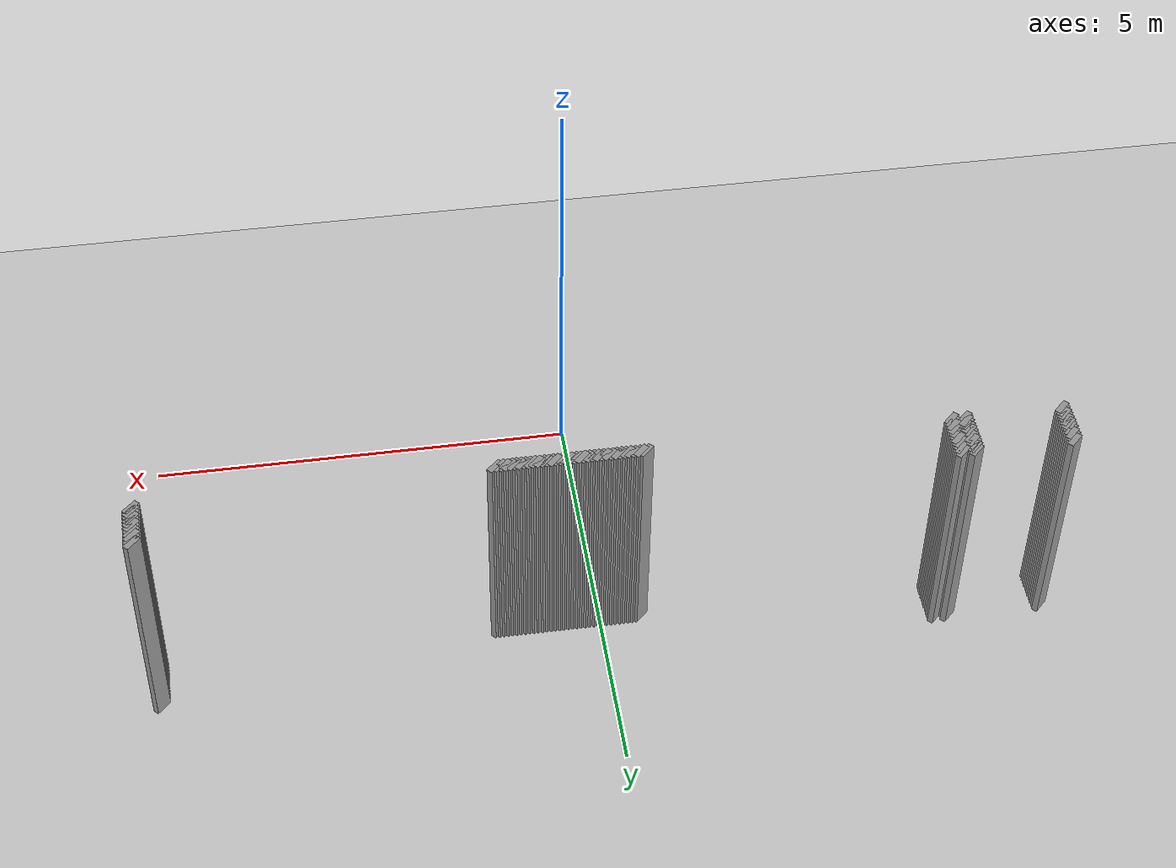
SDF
<sdf version="1.5">
 <world name="default">
  <include><uri>model://ground_plane</uri></include>
  <include><uri>model://sun</uri></include>
  <model name="grey_wall_315">
   <static>1</static>
   <link name="link">
    <pose>5.075 3.575  1.4 0 0 -0.785398163397</pose>
    <collision name="collision"><geometry><box><size>0.0707106781187 .2  2.8</size></box></geometry></collision>
    <visual name="visual">
     <cast_shadows>0</cast_shadows>
     <geometry><box><size>0.0707106781187 .2  2.8</size></box></geometry>
     <material>
      <script>
       <uri>model://grey_wall/materials/scripts</uri>
       <uri>model://grey_wall/materials/textures</uri>
       <name>vrc/grey_wall</name>
      </script>
     </material>
    </visual>
   </link>
  </model>
  <model name="grey_wall_316">
   <static>1</static>
   <link name="link">
    <pose>-5.125 3.525  1.4 0 0 -0.785398163397</pose>
    <collision name="collision"><geometry><box><size>0.0707106781187 .2  2.8</size></box></geometry></collision>
    <visual name="visual">
     <cast_shadows>0</cast_shadows>
     <geometry><box><size>0.0707106781187 .2  2.8</size></box></geometry>
     <material>
      <script>
       <uri>model://grey_wall/materials/scripts</uri>
       <uri>model://grey_wall/materials/textures</uri>
       <name>vrc/grey_wall</name>
      </script>
     </material>
    </visual>
   </link>
  </model>
  <model name="grey_wall_317">
   <static>1</static>
   <link name="link">
    <pose>-4.025 3.525  1.4 0 0 -0.785398163397</pose>
    <collision name="collision"><geometry><box><size>0.0707106781187 .2  2.8</size></box></geometry></collision>
    <visual name="visual">
     <cast_shadows>0</cast_shadows>
     <geometry><box><size>0.0707106781187 .2  2.8</size></box></geometry>
     <material>
      <script>
       <uri>model://grey_wall/materials/scripts</uri>
       <uri>model://grey_wall/materials/textures</uri>
       <name>vrc/grey_wall</name>
      </script>
     </material>
    </visual>
   </link>
  </model>
  <model name="grey_wall_318">
   <static>1</static>
   <link name="link">
    <pose>-3.875 3.525  1.4 0 0 -0.785398163397</pose>
    <collision name="collision"><geometry><box><size>0.0707106781187 .2  2.8</size></box></geometry></collision>
    <visual name="visual">
     <cast_shadows>0</cast_shadows>
     <geometry><box><size>0.0707106781187 .2  2.8</size></box></geometry>
     <material>
      <script>
       <uri>model://grey_wall/materials/scripts</uri>
       <uri>model://grey_wall/materials/textures</uri>
       <name>vrc/grey_wall</name>
      </script>
     </material>
    </visual>
   </link>
  </model>
  <model name="grey_wall_319">
   <static>1</static>
   <link name="link">
    <pose>5.075 3.525  1.4 0 0 -0.785398163397</pose>
    <collision name="collision"><geometry><box><size>0.0707106781187 .2  2.8</size></box></geometry></collision>
    <visual name="visual">
     <cast_shadows>0</cast_shadows>
     <geometry><box><size>0.0707106781187 .2  2.8</size></box></geometry>
     <material>
      <script>
       <uri>model://grey_wall/materials/scripts</uri>
       <uri>model://grey_wall/materials/textures</uri>
       <name>vrc/grey_wall</name>
      </script>
     </material>
    </visual>
   </link>
  </model>
  <model name="grey_wall_320">
   <static>1</static>
   <link name="link">
    <pose>-5.125 3.475  1.4 0 0 -0.785398163397</pose>
    <collision name="collision"><geometry><box><size>0.0707106781187 .2  2.8</size></box></geometry></collision>
    <visual name="visual">
     <cast_shadows>0</cast_shadows>
     <geometry><box><size>0.0707106781187 .2  2.8</size></box></geometry>
     <material>
      <script>
       <uri>model://grey_wall/materials/scripts</uri>
       <uri>model://grey_wall/materials/textures</uri>
       <name>vrc/grey_wall</name>
      </script>
     </material>
    </visual>
   </link>
  </model>
  <model name="grey_wall_321">
   <static>1</static>
   <link name="link">
    <pose>-4.025 3.475  1.4 0 0 -0.785398163397</pose>
    <collision name="collision"><geometry><box><size>0.0707106781187 .2  2.8</size></box></geometry></collision>
    <visual name="visual">
     <cast_shadows>0</cast_shadows>
     <geometry><box><size>0.0707106781187 .2  2.8</size></box></geometry>
     <material>
      <script>
       <uri>model://grey_wall/materials/scripts</uri>
       <uri>model://grey_wall/materials/textures</uri>
       <name>vrc/grey_wall</name>
      </script>
     </material>
    </visual>
   </link>
  </model>
  <model name="grey_wall_322">
   <static>1</static>
   <link name="link">
    <pose>-3.875 3.475  1.4 0 0 -0.785398163397</pose>
    <collision name="collision"><geometry><box><size>0.0707106781187 .2  2.8</size></box></geometry></collision>
    <visual name="visual">
     <cast_shadows>0</cast_shadows>
     <geometry><box><size>0.0707106781187 .2  2.8</size></box></geometry>
     <material>
      <script>
       <uri>model://grey_wall/materials/scripts</uri>
       <uri>model://grey_wall/materials/textures</uri>
       <name>vrc/grey_wall</name>
      </script>
     </material>
    </visual>
   </link>
  </model>
  <model name="grey_wall_323">
   <static>1</static>
   <link name="link">
    <pose>5.075 3.475  1.4 0 0 -0.785398163397</pose>
    <collision name="collision"><geometry><box><size>0.0707106781187 .2  2.8</size></box></geometry></collision>
    <visual name="visual">
     <cast_shadows>0</cast_shadows>
     <geometry><box><size>0.0707106781187 .2  2.8</size></box></geometry>
     <material>
      <script>
       <uri>model://grey_wall/materials/scripts</uri>
       <uri>model://grey_wall/materials/textures</uri>
       <name>vrc/grey_wall</name>
      </script>
     </material>
    </visual>
   </link>
  </model>
  <model name="grey_wall_324">
   <static>1</static>
   <link name="link">
    <pose>-5.125 3.425  1.4 0 0 -0.785398163397</pose>
    <collision name="collision"><geometry><box><size>0.0707106781187 .2  2.8</size></box></geometry></collision>
    <visual name="visual">
     <cast_shadows>0</cast_shadows>
     <geometry><box><size>0.0707106781187 .2  2.8</size></box></geometry>
     <material>
      <script>
       <uri>model://grey_wall/materials/scripts</uri>
       <uri>model://grey_wall/materials/textures</uri>
       <name>vrc/grey_wall</name>
      </script>
     </material>
    </visual>
   </link>
  </model>
  <model name="grey_wall_325">
   <static>1</static>
   <link name="link">
    <pose>-4.025 3.425  1.4 0 0 -0.785398163397</pose>
    <collision name="collision"><geometry><box><size>0.0707106781187 .2  2.8</size></box></geometry></collision>
    <visual name="visual">
     <cast_shadows>0</cast_shadows>
     <geometry><box><size>0.0707106781187 .2  2.8</size></box></geometry>
     <material>
      <script>
       <uri>model://grey_wall/materials/scripts</uri>
       <uri>model://grey_wall/materials/textures</uri>
       <name>vrc/grey_wall</name>
      </script>
     </material>
    </visual>
   </link>
  </model>
  <model name="grey_wall_326">
   <static>1</static>
   <link name="link">
    <pose>-3.875 3.425  1.4 0 0 -0.785398163397</pose>
    <collision name="collision"><geometry><box><size>0.0707106781187 .2  2.8</size></box></geometry></collision>
    <visual name="visual">
     <cast_shadows>0</cast_shadows>
     <geometry><box><size>0.0707106781187 .2  2.8</size></box></geometry>
     <material>
      <script>
       <uri>model://grey_wall/materials/scripts</uri>
       <uri>model://grey_wall/materials/textures</uri>
       <name>vrc/grey_wall</name>
      </script>
     </material>
    </visual>
   </link>
  </model>
  <model name="grey_wall_327">
   <static>1</static>
   <link name="link">
    <pose>5.075 3.425  1.4 0 0 -0.785398163397</pose>
    <collision name="collision"><geometry><box><size>0.0707106781187 .2  2.8</size></box></geometry></collision>
    <visual name="visual">
     <cast_shadows>0</cast_shadows>
     <geometry><box><size>0.0707106781187 .2  2.8</size></box></geometry>
     <material>
      <script>
       <uri>model://grey_wall/materials/scripts</uri>
       <uri>model://grey_wall/materials/textures</uri>
       <name>vrc/grey_wall</name>
      </script>
     </material>
    </visual>
   </link>
  </model>
  <model name="grey_wall_328">
   <static>1</static>
   <link name="link">
    <pose>-5.125 3.375  1.4 0 0 -0.785398163397</pose>
    <collision name="collision"><geometry><box><size>0.0707106781187 .2  2.8</size></box></geometry></collision>
    <visual name="visual">
     <cast_shadows>0</cast_shadows>
     <geometry><box><size>0.0707106781187 .2  2.8</size></box></geometry>
     <material>
      <script>
       <uri>model://grey_wall/materials/scripts</uri>
       <uri>model://grey_wall/materials/textures</uri>
       <name>vrc/grey_wall</name>
      </script>
     </material>
    </visual>
   </link>
  </model>
  <model name="grey_wall_329">
   <static>1</static>
   <link name="link">
    <pose>-4.025 3.375  1.4 0 0 -0.785398163397</pose>
    <collision name="collision"><geometry><box><size>0.0707106781187 .2  2.8</size></box></geometry></collision>
    <visual name="visual">
     <cast_shadows>0</cast_shadows>
     <geometry><box><size>0.0707106781187 .2  2.8</size></box></geometry>
     <material>
      <script>
       <uri>model://grey_wall/materials/scripts</uri>
       <uri>model://grey_wall/materials/textures</uri>
       <name>vrc/grey_wall</name>
      </script>
     </material>
    </visual>
   </link>
  </model>
  <model name="grey_wall_330">
   <static>1</static>
   <link name="link">
    <pose>-3.875 3.375  1.4 0 0 -0.785398163397</pose>
    <collision name="collision"><geometry><box><size>0.0707106781187 .2  2.8</size></box></geometry></collision>
    <visual name="visual">
     <cast_shadows>0</cast_shadows>
     <geometry><box><size>0.0707106781187 .2  2.8</size></box></geometry>
     <material>
      <script>
       <uri>model://grey_wall/materials/scripts</uri>
       <uri>model://grey_wall/materials/textures</uri>
       <name>vrc/grey_wall</name>
      </script>
     </material>
    </visual>
   </link>
  </model>
  <model name="grey_wall_331">
   <static>1</static>
   <link name="link">
    <pose>5.075 3.375  1.4 0 0 -0.785398163397</pose>
    <collision name="collision"><geometry><box><size>0.0707106781187 .2  2.8</size></box></geometry></collision>
    <visual name="visual">
     <cast_shadows>0</cast_shadows>
     <geometry><box><size>0.0707106781187 .2  2.8</size></box></geometry>
     <material>
      <script>
       <uri>model://grey_wall/materials/scripts</uri>
       <uri>model://grey_wall/materials/textures</uri>
       <name>vrc/grey_wall</name>
      </script>
     </material>
    </visual>
   </link>
  </model>
  <model name="grey_wall_332">
   <static>1</static>
   <link name="link">
    <pose>-5.125 3.325  1.4 0 0 -0.785398163397</pose>
    <collision name="collision"><geometry><box><size>0.0707106781187 .2  2.8</size></box></geometry></collision>
    <visual name="visual">
     <cast_shadows>0</cast_shadows>
     <geometry><box><size>0.0707106781187 .2  2.8</size></box></geometry>
     <material>
      <script>
       <uri>model://grey_wall/materials/scripts</uri>
       <uri>model://grey_wall/materials/textures</uri>
       <name>vrc/grey_wall</name>
      </script>
     </material>
    </visual>
   </link>
  </model>
  <model name="grey_wall_333">
   <static>1</static>
   <link name="link">
    <pose>-4.025 3.325  1.4 0 0 -0.785398163397</pose>
    <collision name="collision"><geometry><box><size>0.0707106781187 .2  2.8</size></box></geometry></collision>
    <visual name="visual">
     <cast_shadows>0</cast_shadows>
     <geometry><box><size>0.0707106781187 .2  2.8</size></box></geometry>
     <material>
      <script>
       <uri>model://grey_wall/materials/scripts</uri>
       <uri>model://grey_wall/materials/textures</uri>
       <name>vrc/grey_wall</name>
      </script>
     </material>
    </visual>
   </link>
  </model>
  <model name="grey_wall_334">
   <static>1</static>
   <link name="link">
    <pose>-3.875 3.325  1.4 0 0 -0.785398163397</pose>
    <collision name="collision"><geometry><box><size>0.0707106781187 .2  2.8</size></box></geometry></collision>
    <visual name="visual">
     <cast_shadows>0</cast_shadows>
     <geometry><box><size>0.0707106781187 .2  2.8</size></box></geometry>
     <material>
      <script>
       <uri>model://grey_wall/materials/scripts</uri>
       <uri>model://grey_wall/materials/textures</uri>
       <name>vrc/grey_wall</name>
      </script>
     </material>
    </visual>
   </link>
  </model>
  <model name="grey_wall_335">
   <static>1</static>
   <link name="link">
    <pose>5.075 3.325  1.4 0 0 -0.785398163397</pose>
    <collision name="collision"><geometry><box><size>0.0707106781187 .2  2.8</size></box></geometry></collision>
    <visual name="visual">
     <cast_shadows>0</cast_shadows>
     <geometry><box><size>0.0707106781187 .2  2.8</size></box></geometry>
     <material>
      <script>
       <uri>model://grey_wall/materials/scripts</uri>
       <uri>model://grey_wall/materials/textures</uri>
       <name>vrc/grey_wall</name>
      </script>
     </material>
    </visual>
   </link>
  </model>
  <model name="grey_wall_336">
   <static>1</static>
   <link name="link">
    <pose>-5.125 3.275  1.4 0 0 -0.785398163397</pose>
    <collision name="collision"><geometry><box><size>0.0707106781187 .2  2.8</size></box></geometry></collision>
    <visual name="visual">
     <cast_shadows>0</cast_shadows>
     <geometry><box><size>0.0707106781187 .2  2.8</size></box></geometry>
     <material>
      <script>
       <uri>model://grey_wall/materials/scripts</uri>
       <uri>model://grey_wall/materials/textures</uri>
       <name>vrc/grey_wall</name>
      </script>
     </material>
    </visual>
   </link>
  </model>
  <model name="grey_wall_337">
   <static>1</static>
   <link name="link">
    <pose>-4.025 3.275  1.4 0 0 -0.785398163397</pose>
    <collision name="collision"><geometry><box><size>0.0707106781187 .2  2.8</size></box></geometry></collision>
    <visual name="visual">
     <cast_shadows>0</cast_shadows>
     <geometry><box><size>0.0707106781187 .2  2.8</size></box></geometry>
     <material>
      <script>
       <uri>model://grey_wall/materials/scripts</uri>
       <uri>model://grey_wall/materials/textures</uri>
       <name>vrc/grey_wall</name>
      </script>
     </material>
    </visual>
   </link>
  </model>
  <model name="grey_wall_338">
   <static>1</static>
   <link name="link">
    <pose>-3.875 3.275  1.4 0 0 -0.785398163397</pose>
    <collision name="collision"><geometry><box><size>0.0707106781187 .2  2.8</size></box></geometry></collision>
    <visual name="visual">
     <cast_shadows>0</cast_shadows>
     <geometry><box><size>0.0707106781187 .2  2.8</size></box></geometry>
     <material>
      <script>
       <uri>model://grey_wall/materials/scripts</uri>
       <uri>model://grey_wall/materials/textures</uri>
       <name>vrc/grey_wall</name>
      </script>
     </material>
    </visual>
   </link>
  </model>
  <model name="grey_wall_339">
   <static>1</static>
   <link name="link">
    <pose>5.075 3.275  1.4 0 0 -0.785398163397</pose>
    <collision name="collision"><geometry><box><size>0.0707106781187 .2  2.8</size></box></geometry></collision>
    <visual name="visual">
     <cast_shadows>0</cast_shadows>
     <geometry><box><size>0.0707106781187 .2  2.8</size></box></geometry>
     <material>
      <script>
       <uri>model://grey_wall/materials/scripts</uri>
       <uri>model://grey_wall/materials/textures</uri>
       <name>vrc/grey_wall</name>
      </script>
     </material>
    </visual>
   </link>
  </model>
  <model name="grey_wall_340">
   <static>1</static>
   <link name="link">
    <pose>-5.125 3.225  1.4 0 0 -0.785398163397</pose>
    <collision name="collision"><geometry><box><size>0.0707106781187 .2  2.8</size></box></geometry></collision>
    <visual name="visual">
     <cast_shadows>0</cast_shadows>
     <geometry><box><size>0.0707106781187 .2  2.8</size></box></geometry>
     <material>
      <script>
       <uri>model://grey_wall/materials/scripts</uri>
       <uri>model://grey_wall/materials/textures</uri>
       <name>vrc/grey_wall</name>
      </script>
     </material>
    </visual>
   </link>
  </model>
  <model name="grey_wall_341">
   <static>1</static>
   <link name="link">
    <pose>-4.025 3.225  1.4 0 0 -0.785398163397</pose>
    <collision name="collision"><geometry><box><size>0.0707106781187 .2  2.8</size></box></geometry></collision>
    <visual name="visual">
     <cast_shadows>0</cast_shadows>
     <geometry><box><size>0.0707106781187 .2  2.8</size></box></geometry>
     <material>
      <script>
       <uri>model://grey_wall/materials/scripts</uri>
       <uri>model://grey_wall/materials/textures</uri>
       <name>vrc/grey_wall</name>
      </script>
     </material>
    </visual>
   </link>
  </model>
  <model name="grey_wall_342">
   <static>1</static>
   <link name="link">
    <pose>-3.875 3.225  1.4 0 0 -0.785398163397</pose>
    <collision name="collision"><geometry><box><size>0.0707106781187 .2  2.8</size></box></geometry></collision>
    <visual name="visual">
     <cast_shadows>0</cast_shadows>
     <geometry><box><size>0.0707106781187 .2  2.8</size></box></geometry>
     <material>
      <script>
       <uri>model://grey_wall/materials/scripts</uri>
       <uri>model://grey_wall/materials/textures</uri>
       <name>vrc/grey_wall</name>
      </script>
     </material>
    </visual>
   </link>
  </model>
  <model name="grey_wall_343">
   <static>1</static>
   <link name="link">
    <pose>5.075 3.225  1.4 0 0 -0.785398163397</pose>
    <collision name="collision"><geometry><box><size>0.0707106781187 .2  2.8</size></box></geometry></collision>
    <visual name="visual">
     <cast_shadows>0</cast_shadows>
     <geometry><box><size>0.0707106781187 .2  2.8</size></box></geometry>
     <material>
      <script>
       <uri>model://grey_wall/materials/scripts</uri>
       <uri>model://grey_wall/materials/textures</uri>
       <name>vrc/grey_wall</name>
      </script>
     </material>
    </visual>
   </link>
  </model>
  <model name="grey_wall_344">
   <static>1</static>
   <link name="link">
    <pose>-5.125 3.175  1.4 0 0 -0.785398163397</pose>
    <collision name="collision"><geometry><box><size>0.0707106781187 .2  2.8</size></box></geometry></collision>
    <visual name="visual">
     <cast_shadows>0</cast_shadows>
     <geometry><box><size>0.0707106781187 .2  2.8</size></box></geometry>
     <material>
      <script>
       <uri>model://grey_wall/materials/scripts</uri>
       <uri>model://grey_wall/materials/textures</uri>
       <name>vrc/grey_wall</name>
      </script>
     </material>
    </visual>
   </link>
  </model>
  <model name="grey_wall_345">
   <static>1</static>
   <link name="link">
    <pose>-4.025 3.175  1.4 0 0 -0.785398163397</pose>
    <collision name="collision"><geometry><box><size>0.0707106781187 .2  2.8</size></box></geometry></collision>
    <visual name="visual">
     <cast_shadows>0</cast_shadows>
     <geometry><box><size>0.0707106781187 .2  2.8</size></box></geometry>
     <material>
      <script>
       <uri>model://grey_wall/materials/scripts</uri>
       <uri>model://grey_wall/materials/textures</uri>
       <name>vrc/grey_wall</name>
      </script>
     </material>
    </visual>
   </link>
  </model>
  <model name="grey_wall_346">
   <static>1</static>
   <link name="link">
    <pose>-3.875 3.175  1.4 0 0 -0.785398163397</pose>
    <collision name="collision"><geometry><box><size>0.0707106781187 .2  2.8</size></box></geometry></collision>
    <visual name="visual">
     <cast_shadows>0</cast_shadows>
     <geometry><box><size>0.0707106781187 .2  2.8</size></box></geometry>
     <material>
      <script>
       <uri>model://grey_wall/materials/scripts</uri>
       <uri>model://grey_wall/materials/textures</uri>
       <name>vrc/grey_wall</name>
      </script>
     </material>
    </visual>
   </link>
  </model>
  <model name="grey_wall_347">
   <static>1</static>
   <link name="link">
    <pose>5.075 3.175  1.4 0 0 -0.785398163397</pose>
    <collision name="collision"><geometry><box><size>0.0707106781187 .2  2.8</size></box></geometry></collision>
    <visual name="visual">
     <cast_shadows>0</cast_shadows>
     <geometry><box><size>0.0707106781187 .2  2.8</size></box></geometry>
     <material>
      <script>
       <uri>model://grey_wall/materials/scripts</uri>
       <uri>model://grey_wall/materials/textures</uri>
       <name>vrc/grey_wall</name>
      </script>
     </material>
    </visual>
   </link>
  </model>
  <model name="grey_wall_348">
   <static>1</static>
   <link name="link">
    <pose>-5.125 3.125  1.4 0 0 -0.785398163397</pose>
    <collision name="collision"><geometry><box><size>0.0707106781187 .2  2.8</size></box></geometry></collision>
    <visual name="visual">
     <cast_shadows>0</cast_shadows>
     <geometry><box><size>0.0707106781187 .2  2.8</size></box></geometry>
     <material>
      <script>
       <uri>model://grey_wall/materials/scripts</uri>
       <uri>model://grey_wall/materials/textures</uri>
       <name>vrc/grey_wall</name>
      </script>
     </material>
    </visual>
   </link>
  </model>
  <model name="grey_wall_349">
   <static>1</static>
   <link name="link">
    <pose>-4.025 3.125  1.4 0 0 -0.785398163397</pose>
    <collision name="collision"><geometry><box><size>0.0707106781187 .2  2.8</size></box></geometry></collision>
    <visual name="visual">
     <cast_shadows>0</cast_shadows>
     <geometry><box><size>0.0707106781187 .2  2.8</size></box></geometry>
     <material>
      <script>
       <uri>model://grey_wall/materials/scripts</uri>
       <uri>model://grey_wall/materials/textures</uri>
       <name>vrc/grey_wall</name>
      </script>
     </material>
    </visual>
   </link>
  </model>
  <model name="grey_wall_350">
   <static>1</static>
   <link name="link">
    <pose>-3.875 3.125  1.4 0 0 -0.785398163397</pose>
    <collision name="collision"><geometry><box><size>0.0707106781187 .2  2.8</size></box></geometry></collision>
    <visual name="visual">
     <cast_shadows>0</cast_shadows>
     <geometry><box><size>0.0707106781187 .2  2.8</size></box></geometry>
     <material>
      <script>
       <uri>model://grey_wall/materials/scripts</uri>
       <uri>model://grey_wall/materials/textures</uri>
       <name>vrc/grey_wall</name>
      </script>
     </material>
    </visual>
   </link>
  </model>
  <model name="grey_wall_351">
   <static>1</static>
   <link name="link">
    <pose>5.075 3.125  1.4 0 0 -0.785398163397</pose>
    <collision name="collision"><geometry><box><size>0.0707106781187 .2  2.8</size></box></geometry></collision>
    <visual name="visual">
     <cast_shadows>0</cast_shadows>
     <geometry><box><size>0.0707106781187 .2  2.8</size></box></geometry>
     <material>
      <script>
       <uri>model://grey_wall/materials/scripts</uri>
       <uri>model://grey_wall/materials/textures</uri>
       <name>vrc/grey_wall</name>
      </script>
     </material>
    </visual>
   </link>
  </model>
  <model name="grey_wall_352">
   <static>1</static>
   <link name="link">
    <pose>-5.125 3.075  1.4 0 0 -0.785398163397</pose>
    <collision name="collision"><geometry><box><size>0.0707106781187 .2  2.8</size></box></geometry></collision>
    <visual name="visual">
     <cast_shadows>0</cast_shadows>
     <geometry><box><size>0.0707106781187 .2  2.8</size></box></geometry>
     <material>
      <script>
       <uri>model://grey_wall/materials/scripts</uri>
       <uri>model://grey_wall/materials/textures</uri>
       <name>vrc/grey_wall</name>
      </script>
     </material>
    </visual>
   </link>
  </model>
  <model name="grey_wall_353">
   <static>1</static>
   <link name="link">
    <pose>-4.025 3.075  1.4 0 0 -0.785398163397</pose>
    <collision name="collision"><geometry><box><size>0.0707106781187 .2  2.8</size></box></geometry></collision>
    <visual name="visual">
     <cast_shadows>0</cast_shadows>
     <geometry><box><size>0.0707106781187 .2  2.8</size></box></geometry>
     <material>
      <script>
       <uri>model://grey_wall/materials/scripts</uri>
       <uri>model://grey_wall/materials/textures</uri>
       <name>vrc/grey_wall</name>
      </script>
     </material>
    </visual>
   </link>
  </model>
  <model name="grey_wall_354">
   <static>1</static>
   <link name="link">
    <pose>-3.875 3.075  1.4 0 0 -0.785398163397</pose>
    <collision name="collision"><geometry><box><size>0.0707106781187 .2  2.8</size></box></geometry></collision>
    <visual name="visual">
     <cast_shadows>0</cast_shadows>
     <geometry><box><size>0.0707106781187 .2  2.8</size></box></geometry>
     <material>
      <script>
       <uri>model://grey_wall/materials/scripts</uri>
       <uri>model://grey_wall/materials/textures</uri>
       <name>vrc/grey_wall</name>
      </script>
     </material>
    </visual>
   </link>
  </model>
  <model name="grey_wall_355">
   <static>1</static>
   <link name="link">
    <pose>5.075 3.075  1.4 0 0 -0.785398163397</pose>
    <collision name="collision"><geometry><box><size>0.0707106781187 .2  2.8</size></box></geometry></collision>
    <visual name="visual">
     <cast_shadows>0</cast_shadows>
     <geometry><box><size>0.0707106781187 .2  2.8</size></box></geometry>
     <material>
      <script>
       <uri>model://grey_wall/materials/scripts</uri>
       <uri>model://grey_wall/materials/textures</uri>
       <name>vrc/grey_wall</name>
      </script>
     </material>
    </visual>
   </link>
  </model>
  <model name="grey_wall_356">
   <static>1</static>
   <link name="link">
    <pose>-5.125 3.025  1.4 0 0 -0.785398163397</pose>
    <collision name="collision"><geometry><box><size>0.0707106781187 .2  2.8</size></box></geometry></collision>
    <visual name="visual">
     <cast_shadows>0</cast_shadows>
     <geometry><box><size>0.0707106781187 .2  2.8</size></box></geometry>
     <material>
      <script>
       <uri>model://grey_wall/materials/scripts</uri>
       <uri>model://grey_wall/materials/textures</uri>
       <name>vrc/grey_wall</name>
      </script>
     </material>
    </visual>
   </link>
  </model>
  <model name="grey_wall_357">
   <static>1</static>
   <link name="link">
    <pose>-4.025 3.025  1.4 0 0 -0.785398163397</pose>
    <collision name="collision"><geometry><box><size>0.0707106781187 .2  2.8</size></box></geometry></collision>
    <visual name="visual">
     <cast_shadows>0</cast_shadows>
     <geometry><box><size>0.0707106781187 .2  2.8</size></box></geometry>
     <material>
      <script>
       <uri>model://grey_wall/materials/scripts</uri>
       <uri>model://grey_wall/materials/textures</uri>
       <name>vrc/grey_wall</name>
      </script>
     </material>
    </visual>
   </link>
  </model>
  <model name="grey_wall_358">
   <static>1</static>
   <link name="link">
    <pose>-3.875 3.025  1.4 0 0 -0.785398163397</pose>
    <collision name="collision"><geometry><box><size>0.0707106781187 .2  2.8</size></box></geometry></collision>
    <visual name="visual">
     <cast_shadows>0</cast_shadows>
     <geometry><box><size>0.0707106781187 .2  2.8</size></box></geometry>
     <material>
      <script>
       <uri>model://grey_wall/materials/scripts</uri>
       <uri>model://grey_wall/materials/textures</uri>
       <name>vrc/grey_wall</name>
      </script>
     </material>
    </visual>
   </link>
  </model>
  <model name="grey_wall_359">
   <static>1</static>
   <link name="link">
    <pose>-0.475 3.025  1.4 0 0 -0.785398163397</pose>
    <collision name="collision"><geometry><box><size>0.0707106781187 .2  2.8</size></box></geometry></collision>
    <visual name="visual">
     <cast_shadows>0</cast_shadows>
     <geometry><box><size>0.0707106781187 .2  2.8</size></box></geometry>
     <material>
      <script>
       <uri>model://grey_wall/materials/scripts</uri>
       <uri>model://grey_wall/materials/textures</uri>
       <name>vrc/grey_wall</name>
      </script>
     </material>
    </visual>
   </link>
  </model>
  <model name="grey_wall_360">
   <static>1</static>
   <link name="link">
    <pose>-0.425 3.025  1.4 0 0 -0.785398163397</pose>
    <collision name="collision"><geometry><box><size>0.0707106781187 .2  2.8</size></box></geometry></collision>
    <visual name="visual">
     <cast_shadows>0</cast_shadows>
     <geometry><box><size>0.0707106781187 .2  2.8</size></box></geometry>
     <material>
      <script>
       <uri>model://grey_wall/materials/scripts</uri>
       <uri>model://grey_wall/materials/textures</uri>
       <name>vrc/grey_wall</name>
      </script>
     </material>
    </visual>
   </link>
  </model>
  <model name="grey_wall_361">
   <static>1</static>
   <link name="link">
    <pose>-0.375 3.025  1.4 0 0 -0.785398163397</pose>
    <collision name="collision"><geometry><box><size>0.0707106781187 .2  2.8</size></box></geometry></collision>
    <visual name="visual">
     <cast_shadows>0</cast_shadows>
     <geometry><box><size>0.0707106781187 .2  2.8</size></box></geometry>
     <material>
      <script>
       <uri>model://grey_wall/materials/scripts</uri>
       <uri>model://grey_wall/materials/textures</uri>
       <name>vrc/grey_wall</name>
      </script>
     </material>
    </visual>
   </link>
  </model>
  <model name="grey_wall_362">
   <static>1</static>
   <link name="link">
    <pose>-0.325 3.025  1.4 0 0 -0.785398163397</pose>
    <collision name="collision"><geometry><box><size>0.0707106781187 .2  2.8</size></box></geometry></collision>
    <visual name="visual">
     <cast_shadows>0</cast_shadows>
     <geometry><box><size>0.0707106781187 .2  2.8</size></box></geometry>
     <material>
      <script>
       <uri>model://grey_wall/materials/scripts</uri>
       <uri>model://grey_wall/materials/textures</uri>
       <name>vrc/grey_wall</name>
      </script>
     </material>
    </visual>
   </link>
  </model>
  <model name="grey_wall_363">
   <static>1</static>
   <link name="link">
    <pose>-0.275 3.025  1.4 0 0 -0.785398163397</pose>
    <collision name="collision"><geometry><box><size>0.0707106781187 .2  2.8</size></box></geometry></collision>
    <visual name="visual">
     <cast_shadows>0</cast_shadows>
     <geometry><box><size>0.0707106781187 .2  2.8</size></box></geometry>
     <material>
      <script>
       <uri>model://grey_wall/materials/scripts</uri>
       <uri>model://grey_wall/materials/textures</uri>
       <name>vrc/grey_wall</name>
      </script>
     </material>
    </visual>
   </link>
  </model>
  <model name="grey_wall_364">
   <static>1</static>
   <link name="link">
    <pose>-0.225 3.025  1.4 0 0 -0.785398163397</pose>
    <collision name="collision"><geometry><box><size>0.0707106781187 .2  2.8</size></box></geometry></collision>
    <visual name="visual">
     <cast_shadows>0</cast_shadows>
     <geometry><box><size>0.0707106781187 .2  2.8</size></box></geometry>
     <material>
      <script>
       <uri>model://grey_wall/materials/scripts</uri>
       <uri>model://grey_wall/materials/textures</uri>
       <name>vrc/grey_wall</name>
      </script>
     </material>
    </visual>
   </link>
  </model>
  <model name="grey_wall_365">
   <static>1</static>
   <link name="link">
    <pose>-0.175 3.025  1.4 0 0 -0.785398163397</pose>
    <collision name="collision"><geometry><box><size>0.0707106781187 .2  2.8</size></box></geometry></collision>
    <visual name="visual">
     <cast_shadows>0</cast_shadows>
     <geometry><box><size>0.0707106781187 .2  2.8</size></box></geometry>
     <material>
      <script>
       <uri>model://grey_wall/materials/scripts</uri>
       <uri>model://grey_wall/materials/textures</uri>
       <name>vrc/grey_wall</name>
      </script>
     </material>
    </visual>
   </link>
  </model>
  <model name="grey_wall_366">
   <static>1</static>
   <link name="link">
    <pose>-0.125 3.025  1.4 0 0 -0.785398163397</pose>
    <collision name="collision"><geometry><box><size>0.0707106781187 .2  2.8</size></box></geometry></collision>
    <visual name="visual">
     <cast_shadows>0</cast_shadows>
     <geometry><box><size>0.0707106781187 .2  2.8</size></box></geometry>
     <material>
      <script>
       <uri>model://grey_wall/materials/scripts</uri>
       <uri>model://grey_wall/materials/textures</uri>
       <name>vrc/grey_wall</name>
      </script>
     </material>
    </visual>
   </link>
  </model>
  <model name="grey_wall_367">
   <static>1</static>
   <link name="link">
    <pose>-0.075 3.025  1.4 0 0 -0.785398163397</pose>
    <collision name="collision"><geometry><box><size>0.0707106781187 .2  2.8</size></box></geometry></collision>
    <visual name="visual">
     <cast_shadows>0</cast_shadows>
     <geometry><box><size>0.0707106781187 .2  2.8</size></box></geometry>
     <material>
      <script>
       <uri>model://grey_wall/materials/scripts</uri>
       <uri>model://grey_wall/materials/textures</uri>
       <name>vrc/grey_wall</name>
      </script>
     </material>
    </visual>
   </link>
  </model>
  <model name="grey_wall_368">
   <static>1</static>
   <link name="link">
    <pose>-0.025 3.025  1.4 0 0 -0.785398163397</pose>
    <collision name="collision"><geometry><box><size>0.0707106781187 .2  2.8</size></box></geometry></collision>
    <visual name="visual">
     <cast_shadows>0</cast_shadows>
     <geometry><box><size>0.0707106781187 .2  2.8</size></box></geometry>
     <material>
      <script>
       <uri>model://grey_wall/materials/scripts</uri>
       <uri>model://grey_wall/materials/textures</uri>
       <name>vrc/grey_wall</name>
      </script>
     </material>
    </visual>
   </link>
  </model>
  <model name="grey_wall_369">
   <static>1</static>
   <link name="link">
    <pose>0.025 3.025  1.4 0 0 -0.785398163397</pose>
    <collision name="collision"><geometry><box><size>0.0707106781187 .2  2.8</size></box></geometry></collision>
    <visual name="visual">
     <cast_shadows>0</cast_shadows>
     <geometry><box><size>0.0707106781187 .2  2.8</size></box></geometry>
     <material>
      <script>
       <uri>model://grey_wall/materials/scripts</uri>
       <uri>model://grey_wall/materials/textures</uri>
       <name>vrc/grey_wall</name>
      </script>
     </material>
    </visual>
   </link>
  </model>
  <model name="grey_wall_370">
   <static>1</static>
   <link name="link">
    <pose>0.075 3.025  1.4 0 0 -0.785398163397</pose>
    <collision name="collision"><geometry><box><size>0.0707106781187 .2  2.8</size></box></geometry></collision>
    <visual name="visual">
     <cast_shadows>0</cast_shadows>
     <geometry><box><size>0.0707106781187 .2  2.8</size></box></geometry>
     <material>
      <script>
       <uri>model://grey_wall/materials/scripts</uri>
       <uri>model://grey_wall/materials/textures</uri>
       <name>vrc/grey_wall</name>
      </script>
     </material>
    </visual>
   </link>
  </model>
  <model name="grey_wall_371">
   <static>1</static>
   <link name="link">
    <pose>0.125 3.025  1.4 0 0 -0.785398163397</pose>
    <collision name="collision"><geometry><box><size>0.0707106781187 .2  2.8</size></box></geometry></collision>
    <visual name="visual">
     <cast_shadows>0</cast_shadows>
     <geometry><box><size>0.0707106781187 .2  2.8</size></box></geometry>
     <material>
      <script>
       <uri>model://grey_wall/materials/scripts</uri>
       <uri>model://grey_wall/materials/textures</uri>
       <name>vrc/grey_wall</name>
      </script>
     </material>
    </visual>
   </link>
  </model>
  <model name="grey_wall_372">
   <static>1</static>
   <link name="link">
    <pose>0.175 3.025  1.4 0 0 -0.785398163397</pose>
    <collision name="collision"><geometry><box><size>0.0707106781187 .2  2.8</size></box></geometry></collision>
    <visual name="visual">
     <cast_shadows>0</cast_shadows>
     <geometry><box><size>0.0707106781187 .2  2.8</size></box></geometry>
     <material>
      <script>
       <uri>model://grey_wall/materials/scripts</uri>
       <uri>model://grey_wall/materials/textures</uri>
       <name>vrc/grey_wall</name>
      </script>
     </material>
    </visual>
   </link>
  </model>
  <model name="grey_wall_373">
   <static>1</static>
   <link name="link">
    <pose>0.225 3.025  1.4 0 0 -0.785398163397</pose>
    <collision name="collision"><geometry><box><size>0.0707106781187 .2  2.8</size></box></geometry></collision>
    <visual name="visual">
     <cast_shadows>0</cast_shadows>
     <geometry><box><size>0.0707106781187 .2  2.8</size></box></geometry>
     <material>
      <script>
       <uri>model://grey_wall/materials/scripts</uri>
       <uri>model://grey_wall/materials/textures</uri>
       <name>vrc/grey_wall</name>
      </script>
     </material>
    </visual>
   </link>
  </model>
  <model name="grey_wall_374">
   <static>1</static>
   <link name="link">
    <pose>0.275 3.025  1.4 0 0 -0.785398163397</pose>
    <collision name="collision"><geometry><box><size>0.0707106781187 .2  2.8</size></box></geometry></collision>
    <visual name="visual">
     <cast_shadows>0</cast_shadows>
     <geometry><box><size>0.0707106781187 .2  2.8</size></box></geometry>
     <material>
      <script>
       <uri>model://grey_wall/materials/scripts</uri>
       <uri>model://grey_wall/materials/textures</uri>
       <name>vrc/grey_wall</name>
      </script>
     </material>
    </visual>
   </link>
  </model>
  <model name="grey_wall_375">
   <static>1</static>
   <link name="link">
    <pose>0.325 3.025  1.4 0 0 -0.785398163397</pose>
    <collision name="collision"><geometry><box><size>0.0707106781187 .2  2.8</size></box></geometry></collision>
    <visual name="visual">
     <cast_shadows>0</cast_shadows>
     <geometry><box><size>0.0707106781187 .2  2.8</size></box></geometry>
     <material>
      <script>
       <uri>model://grey_wall/materials/scripts</uri>
       <uri>model://grey_wall/materials/textures</uri>
       <name>vrc/grey_wall</name>
      </script>
     </material>
    </visual>
   </link>
  </model>
  <model name="grey_wall_376">
   <static>1</static>
   <link name="link">
    <pose>0.375 3.025  1.4 0 0 -0.785398163397</pose>
    <collision name="collision"><geometry><box><size>0.0707106781187 .2  2.8</size></box></geometry></collision>
    <visual name="visual">
     <cast_shadows>0</cast_shadows>
     <geometry><box><size>0.0707106781187 .2  2.8</size></box></geometry>
     <material>
      <script>
       <uri>model://grey_wall/materials/scripts</uri>
       <uri>model://grey_wall/materials/textures</uri>
       <name>vrc/grey_wall</name>
      </script>
     </material>
    </visual>
   </link>
  </model>
  <model name="grey_wall_377">
   <static>1</static>
   <link name="link">
    <pose>0.425 3.025  1.4 0 0 -0.785398163397</pose>
    <collision name="collision"><geometry><box><size>0.0707106781187 .2  2.8</size></box></geometry></collision>
    <visual name="visual">
     <cast_shadows>0</cast_shadows>
     <geometry><box><size>0.0707106781187 .2  2.8</size></box></geometry>
     <material>
      <script>
       <uri>model://grey_wall/materials/scripts</uri>
       <uri>model://grey_wall/materials/textures</uri>
       <name>vrc/grey_wall</name>
      </script>
     </material>
    </visual>
   </link>
  </model>
  <model name="grey_wall_378">
   <static>1</static>
   <link name="link">
    <pose>0.475 3.025  1.4 0 0 -0.785398163397</pose>
    <collision name="collision"><geometry><box><size>0.0707106781187 .2  2.8</size></box></geometry></collision>
    <visual name="visual">
     <cast_shadows>0</cast_shadows>
     <geometry><box><size>0.0707106781187 .2  2.8</size></box></geometry>
     <material>
      <script>
       <uri>model://grey_wall/materials/scripts</uri>
       <uri>model://grey_wall/materials/textures</uri>
       <name>vrc/grey_wall</name>
      </script>
     </material>
    </visual>
   </link>
  </model>
  <model name="grey_wall_379">
   <static>1</static>
   <link name="link">
    <pose>0.525 3.025  1.4 0 0 -0.785398163397</pose>
    <collision name="collision"><geometry><box><size>0.0707106781187 .2  2.8</size></box></geometry></collision>
    <visual name="visual">
     <cast_shadows>0</cast_shadows>
     <geometry><box><size>0.0707106781187 .2  2.8</size></box></geometry>
     <material>
      <script>
       <uri>model://grey_wall/materials/scripts</uri>
       <uri>model://grey_wall/materials/textures</uri>
       <name>vrc/grey_wall</name>
      </script>
     </material>
    </visual>
   </link>
  </model>
  <model name="grey_wall_380">
   <static>1</static>
   <link name="link">
    <pose>0.575 3.025  1.4 0 0 -0.785398163397</pose>
    <collision name="collision"><geometry><box><size>0.0707106781187 .2  2.8</size></box></geometry></collision>
    <visual name="visual">
     <cast_shadows>0</cast_shadows>
     <geometry><box><size>0.0707106781187 .2  2.8</size></box></geometry>
     <material>
      <script>
       <uri>model://grey_wall/materials/scripts</uri>
       <uri>model://grey_wall/materials/textures</uri>
       <name>vrc/grey_wall</name>
      </script>
     </material>
    </visual>
   </link>
  </model>
  <model name="grey_wall_381">
   <static>1</static>
   <link name="link">
    <pose>0.625 3.025  1.4 0 0 -0.785398163397</pose>
    <collision name="collision"><geometry><box><size>0.0707106781187 .2  2.8</size></box></geometry></collision>
    <visual name="visual">
     <cast_shadows>0</cast_shadows>
     <geometry><box><size>0.0707106781187 .2  2.8</size></box></geometry>
     <material>
      <script>
       <uri>model://grey_wall/materials/scripts</uri>
       <uri>model://grey_wall/materials/textures</uri>
       <name>vrc/grey_wall</name>
      </script>
     </material>
    </visual>
   </link>
  </model>
  <model name="grey_wall_382">
   <static>1</static>
   <link name="link">
    <pose>0.675 3.025  1.4 0 0 -0.785398163397</pose>
    <collision name="collision"><geometry><box><size>0.0707106781187 .2  2.8</size></box></geometry></collision>
    <visual name="visual">
     <cast_shadows>0</cast_shadows>
     <geometry><box><size>0.0707106781187 .2  2.8</size></box></geometry>
     <material>
      <script>
       <uri>model://grey_wall/materials/scripts</uri>
       <uri>model://grey_wall/materials/textures</uri>
       <name>vrc/grey_wall</name>
      </script>
     </material>
    </visual>
   </link>
  </model>
  <model name="grey_wall_383">
   <static>1</static>
   <link name="link">
    <pose>0.725 3.025  1.4 0 0 -0.785398163397</pose>
    <collision name="collision"><geometry><box><size>0.0707106781187 .2  2.8</size></box></geometry></collision>
    <visual name="visual">
     <cast_shadows>0</cast_shadows>
     <geometry><box><size>0.0707106781187 .2  2.8</size></box></geometry>
     <material>
      <script>
       <uri>model://grey_wall/materials/scripts</uri>
       <uri>model://grey_wall/materials/textures</uri>
       <name>vrc/grey_wall</name>
      </script>
     </material>
    </visual>
   </link>
  </model>
  <model name="grey_wall_384">
   <static>1</static>
   <link name="link">
    <pose>0.775 3.025  1.4 0 0 -0.785398163397</pose>
    <collision name="collision"><geometry><box><size>0.0707106781187 .2  2.8</size></box></geometry></collision>
    <visual name="visual">
     <cast_shadows>0</cast_shadows>
     <geometry><box><size>0.0707106781187 .2  2.8</size></box></geometry>
     <material>
      <script>
       <uri>model://grey_wall/materials/scripts</uri>
       <uri>model://grey_wall/materials/textures</uri>
       <name>vrc/grey_wall</name>
      </script>
     </material>
    </visual>
   </link>
  </model>
  <model name="grey_wall_385">
   <static>1</static>
   <link name="link">
    <pose>0.825 3.025  1.4 0 0 -0.785398163397</pose>
    <collision name="collision"><geometry><box><size>0.0707106781187 .2  2.8</size></box></geometry></collision>
    <visual name="visual">
     <cast_shadows>0</cast_shadows>
     <geometry><box><size>0.0707106781187 .2  2.8</size></box></geometry>
     <material>
      <script>
       <uri>model://grey_wall/materials/scripts</uri>
       <uri>model://grey_wall/materials/textures</uri>
       <name>vrc/grey_wall</name>
      </script>
     </material>
    </visual>
   </link>
  </model>
  <model name="grey_wall_386">
   <static>1</static>
   <link name="link">
    <pose>0.875 3.025  1.4 0 0 -0.785398163397</pose>
    <collision name="collision"><geometry><box><size>0.0707106781187 .2  2.8</size></box></geometry></collision>
    <visual name="visual">
     <cast_shadows>0</cast_shadows>
     <geometry><box><size>0.0707106781187 .2  2.8</size></box></geometry>
     <material>
      <script>
       <uri>model://grey_wall/materials/scripts</uri>
       <uri>model://grey_wall/materials/textures</uri>
       <name>vrc/grey_wall</name>
      </script>
     </material>
    </visual>
   </link>
  </model>
  <model name="grey_wall_387">
   <static>1</static>
   <link name="link">
    <pose>0.925 3.025  1.4 0 0 -0.785398163397</pose>
    <collision name="collision"><geometry><box><size>0.0707106781187 .2  2.8</size></box></geometry></collision>
    <visual name="visual">
     <cast_shadows>0</cast_shadows>
     <geometry><box><size>0.0707106781187 .2  2.8</size></box></geometry>
     <material>
      <script>
       <uri>model://grey_wall/materials/scripts</uri>
       <uri>model://grey_wall/materials/textures</uri>
       <name>vrc/grey_wall</name>
      </script>
     </material>
    </visual>
   </link>
  </model>
  <model name="grey_wall_388">
   <static>1</static>
   <link name="link">
    <pose>0.975 3.025  1.4 0 0 -0.785398163397</pose>
    <collision name="collision"><geometry><box><size>0.0707106781187 .2  2.8</size></box></geometry></collision>
    <visual name="visual">
     <cast_shadows>0</cast_shadows>
     <geometry><box><size>0.0707106781187 .2  2.8</size></box></geometry>
     <material>
      <script>
       <uri>model://grey_wall/materials/scripts</uri>
       <uri>model://grey_wall/materials/textures</uri>
       <name>vrc/grey_wall</name>
      </script>
     </material>
    </visual>
   </link>
  </model>
  <model name="grey_wall_389">
   <static>1</static>
   <link name="link">
    <pose>1.025 3.025  1.4 0 0 -0.785398163397</pose>
    <collision name="collision"><geometry><box><size>0.0707106781187 .2  2.8</size></box></geometry></collision>
    <visual name="visual">
     <cast_shadows>0</cast_shadows>
     <geometry><box><size>0.0707106781187 .2  2.8</size></box></geometry>
     <material>
      <script>
       <uri>model://grey_wall/materials/scripts</uri>
       <uri>model://grey_wall/materials/textures</uri>
       <name>vrc/grey_wall</name>
      </script>
     </material>
    </visual>
   </link>
  </model>
  <model name="grey_wall_390">
   <static>1</static>
   <link name="link">
    <pose>1.075 3.025  1.4 0 0 -0.785398163397</pose>
    <collision name="collision"><geometry><box><size>0.0707106781187 .2  2.8</size></box></geometry></collision>
    <visual name="visual">
     <cast_shadows>0</cast_shadows>
     <geometry><box><size>0.0707106781187 .2  2.8</size></box></geometry>
     <material>
      <script>
       <uri>model://grey_wall/materials/scripts</uri>
       <uri>model://grey_wall/materials/textures</uri>
       <name>vrc/grey_wall</name>
      </script>
     </material>
    </visual>
   </link>
  </model>
  <model name="grey_wall_391">
   <static>1</static>
   <link name="link">
    <pose>1.125 3.025  1.4 0 0 -0.785398163397</pose>
    <collision name="collision"><geometry><box><size>0.0707106781187 .2  2.8</size></box></geometry></collision>
    <visual name="visual">
     <cast_shadows>0</cast_shadows>
     <geometry><box><size>0.0707106781187 .2  2.8</size></box></geometry>
     <material>
      <script>
       <uri>model://grey_wall/materials/scripts</uri>
       <uri>model://grey_wall/materials/textures</uri>
       <name>vrc/grey_wall</name>
      </script>
     </material>
    </visual>
   </link>
  </model>
  <model name="grey_wall_392">
   <static>1</static>
   <link name="link">
    <pose>1.175 3.025  1.4 0 0 -0.785398163397</pose>
    <collision name="collision"><geometry><box><size>0.0707106781187 .2  2.8</size></box></geometry></collision>
    <visual name="visual">
     <cast_shadows>0</cast_shadows>
     <geometry><box><size>0.0707106781187 .2  2.8</size></box></geometry>
     <material>
      <script>
       <uri>model://grey_wall/materials/scripts</uri>
       <uri>model://grey_wall/materials/textures</uri>
       <name>vrc/grey_wall</name>
      </script>
     </material>
    </visual>
   </link>
  </model>
 </world>
</sdf>
